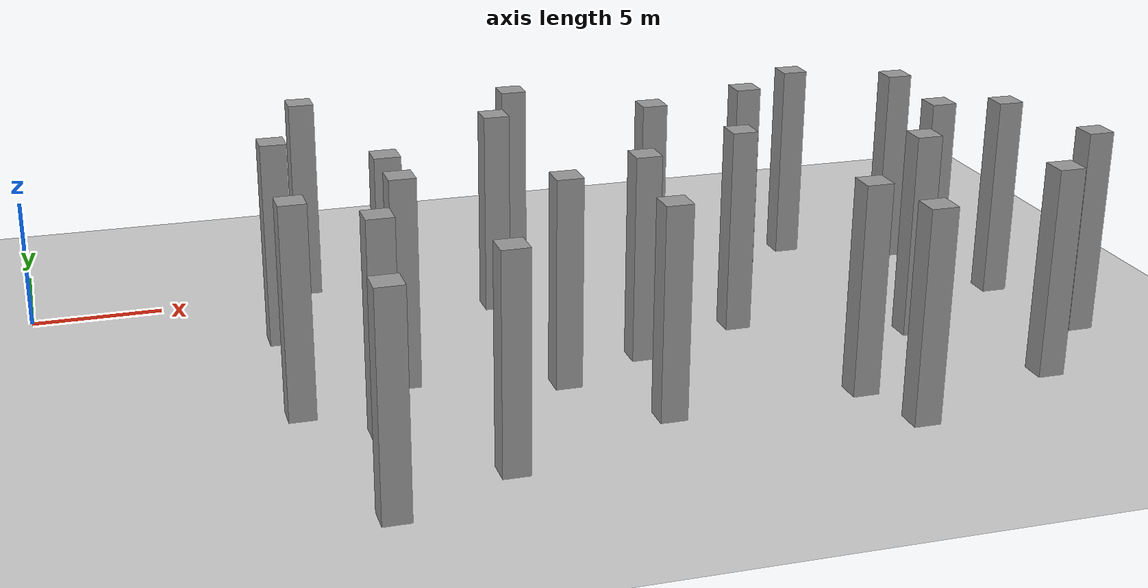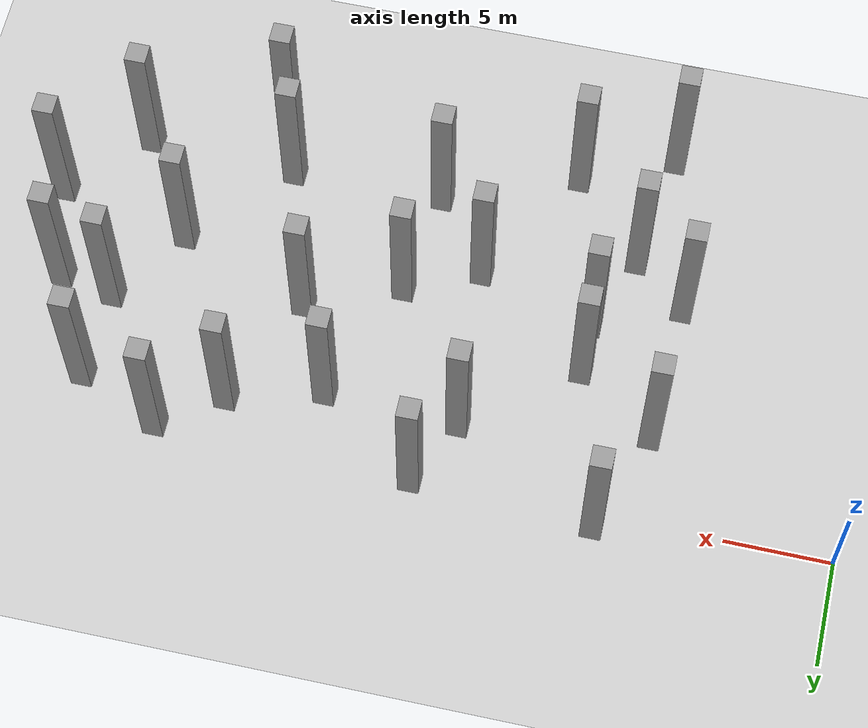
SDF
<sdf version="1.7">
 <world name="default">
  <model name="ground_plane">
   <static>1</static>
   <link name="link">
    <collision name="collision">
     <geometry><plane><normal>0 0 1</normal><size>100 100</size></plane></geometry>
     <surface>
      <contact><collide_bitmask>65535</collide_bitmask></contact>
      <friction><ode><mu>100</mu><mu2>50</mu2></ode></friction>
     </surface>
    </collision>
    <visual name="visual">
     <cast_shadows>0</cast_shadows>
     <geometry><plane><normal>0 0 1</normal><size>100 100</size></plane></geometry>
     <material>
      <script><uri>file://media/materials/scripts/gazebo.material</uri><name>Gazebo/Grey</name></script>
     </material>
    </visual>
   </link>
  </model>
  <model name="unit_box_static52">
   <link name="link">
    <inertial>
     <mass>1</mass>
     <inertia>
      <ixx>0.166667</ixx>
      <ixy>0</ixy>
      <ixz>0</ixz>
      <iyy>0.166667</iyy>
      <iyz>0</iyz>
      <izz>0.166667</izz>
     </inertia>
    </inertial>
    <visual name="visual">
     <geometry><box><size>1 1 8</size></box></geometry>
     <material>
      <script><name>Gazebo/Grey</name><uri>file://media/materials/scripts/gazebo.material</uri></script>
      <shader type="pixel"/>
     </material>
    </visual>
    <collision name="collision">
     <geometry><box><size>1 1 8</size></box></geometry>
     <surface>
      <friction>
       <ode><mu>1</mu><mu2>1</mu2><fdir1>0 0 0</fdir1><slip1>0</slip1><slip2>0</slip2></ode>
       <torsional>
        <coefficient>1</coefficient>
        <patch_radius>0</patch_radius>
        <surface_radius>0</surface_radius>
        <use_patch_radius>1</use_patch_radius>
        <ode><slip>0</slip></ode>
       </torsional>
      </friction>
      <bounce><restitution_coefficient>0</restitution_coefficient><threshold>1e+06</threshold></bounce>
      <contact>
       <collide_without_contact>0</collide_without_contact>
       <collide_without_contact_bitmask>1</collide_without_contact_bitmask>
       <collide_bitmask>1</collide_bitmask>
       <ode>
        <soft_cfm>0</soft_cfm>
        <soft_erp>0.2</soft_erp>
        <kp>1e+13</kp>
        <kd>1</kd>
        <max_vel>0.01</max_vel>
        <min_depth>0</min_depth>
       </ode>
       <bullet>
        <split_impulse>1</split_impulse>
        <split_impulse_penetration_threshold>-0.01</split_impulse_penetration_threshold>
        <soft_cfm>0</soft_cfm>
        <soft_erp>0.2</soft_erp>
        <kp>1e+13</kp>
        <kd>1</kd>
       </bullet>
      </contact>
     </surface>
    </collision>
   </link>
   <static>1</static>
   <pose>19.6242 0.16304 4 0 -0 0</pose>
  </model>
  <model name="unit_box_static59">
   <link name="link">
    <inertial>
     <mass>1</mass>
     <inertia>
      <ixx>0.166667</ixx>
      <ixy>0</ixy>
      <ixz>0</ixz>
      <iyy>0.166667</iyy>
      <iyz>0</iyz>
      <izz>0.166667</izz>
     </inertia>
    </inertial>
    <visual name="visual">
     <geometry><box><size>1 1 8</size></box></geometry>
     <material>
      <script><name>Gazebo/Grey</name><uri>file://media/materials/scripts/gazebo.material</uri></script>
      <shader type="pixel"/>
     </material>
    </visual>
    <collision name="collision">
     <geometry><box><size>1 1 8</size></box></geometry>
     <surface>
      <friction>
       <ode><mu>1</mu><mu2>1</mu2><fdir1>0 0 0</fdir1><slip1>0</slip1><slip2>0</slip2></ode>
       <torsional>
        <coefficient>1</coefficient>
        <patch_radius>0</patch_radius>
        <surface_radius>0</surface_radius>
        <use_patch_radius>1</use_patch_radius>
        <ode><slip>0</slip></ode>
       </torsional>
      </friction>
      <bounce><restitution_coefficient>0</restitution_coefficient><threshold>1e+06</threshold></bounce>
      <contact>
       <collide_without_contact>0</collide_without_contact>
       <collide_without_contact_bitmask>1</collide_without_contact_bitmask>
       <collide_bitmask>1</collide_bitmask>
       <ode>
        <soft_cfm>0</soft_cfm>
        <soft_erp>0.2</soft_erp>
        <kp>1e+13</kp>
        <kd>1</kd>
        <max_vel>0.01</max_vel>
        <min_depth>0</min_depth>
       </ode>
       <bullet>
        <split_impulse>1</split_impulse>
        <split_impulse_penetration_threshold>-0.01</split_impulse_penetration_threshold>
        <soft_cfm>0</soft_cfm>
        <soft_erp>0.2</soft_erp>
        <kp>1e+13</kp>
        <kd>1</kd>
       </bullet>
      </contact>
     </surface>
    </collision>
   </link>
   <static>1</static>
   <pose>11.0233 0.653893 4 0 -0 0</pose>
  </model>
  <model name="unit_box_static64">
   <link name="link">
    <inertial>
     <mass>1</mass>
     <inertia>
      <ixx>0.166667</ixx>
      <ixy>0</ixy>
      <ixz>0</ixz>
      <iyy>0.166667</iyy>
      <iyz>0</iyz>
      <izz>0.166667</izz>
     </inertia>
    </inertial>
    <visual name="visual">
     <geometry><box><size>1 1 8</size></box></geometry>
     <material>
      <script><name>Gazebo/Grey</name><uri>file://media/materials/scripts/gazebo.material</uri></script>
      <shader type="pixel"/>
     </material>
    </visual>
    <collision name="collision">
     <geometry><box><size>1 1 8</size></box></geometry>
     <surface>
      <friction>
       <ode><mu>1</mu><mu2>1</mu2><fdir1>0 0 0</fdir1><slip1>0</slip1><slip2>0</slip2></ode>
       <torsional>
        <coefficient>1</coefficient>
        <patch_radius>0</patch_radius>
        <surface_radius>0</surface_radius>
        <use_patch_radius>1</use_patch_radius>
        <ode><slip>0</slip></ode>
       </torsional>
      </friction>
      <bounce><restitution_coefficient>0</restitution_coefficient><threshold>1e+06</threshold></bounce>
      <contact>
       <collide_without_contact>0</collide_without_contact>
       <collide_without_contact_bitmask>1</collide_without_contact_bitmask>
       <collide_bitmask>1</collide_bitmask>
       <ode>
        <soft_cfm>0</soft_cfm>
        <soft_erp>0.2</soft_erp>
        <kp>1e+13</kp>
        <kd>1</kd>
        <max_vel>0.01</max_vel>
        <min_depth>0</min_depth>
       </ode>
       <bullet>
        <split_impulse>1</split_impulse>
        <split_impulse_penetration_threshold>-0.01</split_impulse_penetration_threshold>
        <soft_cfm>0</soft_cfm>
        <soft_erp>0.2</soft_erp>
        <kp>1e+13</kp>
        <kd>1</kd>
       </bullet>
      </contact>
     </surface>
    </collision>
   </link>
   <static>1</static>
   <pose>24.4703 -3.32359 4 0 -0 0</pose>
  </model>
  <model name="unit_box_static76">
   <link name="link">
    <inertial>
     <mass>1</mass>
     <inertia>
      <ixx>0.166667</ixx>
      <ixy>0</ixy>
      <ixz>0</ixz>
      <iyy>0.166667</iyy>
      <iyz>0</iyz>
      <izz>0.166667</izz>
     </inertia>
    </inertial>
    <visual name="visual">
     <geometry><box><size>1 1 8</size></box></geometry>
     <material>
      <script><name>Gazebo/Grey</name><uri>file://media/materials/scripts/gazebo.material</uri></script>
      <shader type="pixel"/>
     </material>
    </visual>
    <collision name="collision">
     <geometry><box><size>1 1 8</size></box></geometry>
     <surface>
      <friction>
       <ode><mu>1</mu><mu2>1</mu2><fdir1>0 0 0</fdir1><slip1>0</slip1><slip2>0</slip2></ode>
       <torsional>
        <coefficient>1</coefficient>
        <patch_radius>0</patch_radius>
        <surface_radius>0</surface_radius>
        <use_patch_radius>1</use_patch_radius>
        <ode><slip>0</slip></ode>
       </torsional>
      </friction>
      <bounce><restitution_coefficient>0</restitution_coefficient><threshold>1e+06</threshold></bounce>
      <contact>
       <collide_without_contact>0</collide_without_contact>
       <collide_without_contact_bitmask>1</collide_without_contact_bitmask>
       <collide_bitmask>1</collide_bitmask>
       <ode>
        <soft_cfm>0</soft_cfm>
        <soft_erp>0.2</soft_erp>
        <kp>1e+13</kp>
        <kd>1</kd>
        <max_vel>0.01</max_vel>
        <min_depth>0</min_depth>
       </ode>
       <bullet>
        <split_impulse>1</split_impulse>
        <split_impulse_penetration_threshold>-0.01</split_impulse_penetration_threshold>
        <soft_cfm>0</soft_cfm>
        <soft_erp>0.2</soft_erp>
        <kp>1e+13</kp>
        <kd>1</kd>
       </bullet>
      </contact>
     </surface>
    </collision>
   </link>
   <static>1</static>
   <pose>35.5996 -6.23962 4 0 -0 0</pose>
  </model>
  <model name="unit_box_static90">
   <link name="link">
    <inertial>
     <mass>1</mass>
     <inertia>
      <ixx>0.166667</ixx>
      <ixy>0</ixy>
      <ixz>0</ixz>
      <iyy>0.166667</iyy>
      <iyz>0</iyz>
      <izz>0.166667</izz>
     </inertia>
    </inertial>
    <visual name="visual">
     <geometry><box><size>1 1 8</size></box></geometry>
     <material>
      <script><name>Gazebo/Grey</name><uri>file://media/materials/scripts/gazebo.material</uri></script>
      <shader type="pixel"/>
     </material>
    </visual>
    <collision name="collision">
     <geometry><box><size>1 1 8</size></box></geometry>
     <surface>
      <friction>
       <ode><mu>1</mu><mu2>1</mu2><fdir1>0 0 0</fdir1><slip1>0</slip1><slip2>0</slip2></ode>
       <torsional>
        <coefficient>1</coefficient>
        <patch_radius>0</patch_radius>
        <surface_radius>0</surface_radius>
        <use_patch_radius>1</use_patch_radius>
        <ode><slip>0</slip></ode>
       </torsional>
      </friction>
      <bounce><restitution_coefficient>0</restitution_coefficient><threshold>1e+06</threshold></bounce>
      <contact>
       <collide_without_contact>0</collide_without_contact>
       <collide_without_contact_bitmask>1</collide_without_contact_bitmask>
       <collide_bitmask>1</collide_bitmask>
       <ode>
        <soft_cfm>0</soft_cfm>
        <soft_erp>0.2</soft_erp>
        <kp>1e+13</kp>
        <kd>1</kd>
        <max_vel>0.01</max_vel>
        <min_depth>0</min_depth>
       </ode>
       <bullet>
        <split_impulse>1</split_impulse>
        <split_impulse_penetration_threshold>-0.01</split_impulse_penetration_threshold>
        <soft_cfm>0</soft_cfm>
        <soft_erp>0.2</soft_erp>
        <kp>1e+13</kp>
        <kd>1</kd>
       </bullet>
      </contact>
     </surface>
    </collision>
   </link>
   <static>1</static>
   <pose>29.6703 -17.5053 4 0 -0 0</pose>
  </model>
  <model name="unit_box_static92">
   <link name="link">
    <inertial>
     <mass>1</mass>
     <inertia>
      <ixx>0.166667</ixx>
      <ixy>0</ixy>
      <ixz>0</ixz>
      <iyy>0.166667</iyy>
      <iyz>0</iyz>
      <izz>0.166667</izz>
     </inertia>
    </inertial>
    <visual name="visual">
     <geometry><box><size>1 1 8</size></box></geometry>
     <material>
      <script><name>Gazebo/Grey</name><uri>file://media/materials/scripts/gazebo.material</uri></script>
      <shader type="pixel"/>
     </material>
    </visual>
    <collision name="collision">
     <geometry><box><size>1 1 8</size></box></geometry>
     <surface>
      <friction>
       <ode><mu>1</mu><mu2>1</mu2><fdir1>0 0 0</fdir1><slip1>0</slip1><slip2>0</slip2></ode>
       <torsional>
        <coefficient>1</coefficient>
        <patch_radius>0</patch_radius>
        <surface_radius>0</surface_radius>
        <use_patch_radius>1</use_patch_radius>
        <ode><slip>0</slip></ode>
       </torsional>
      </friction>
      <bounce><restitution_coefficient>0</restitution_coefficient><threshold>1e+06</threshold></bounce>
      <contact>
       <collide_without_contact>0</collide_without_contact>
       <collide_without_contact_bitmask>1</collide_without_contact_bitmask>
       <collide_bitmask>1</collide_bitmask>
       <ode>
        <soft_cfm>0</soft_cfm>
        <soft_erp>0.2</soft_erp>
        <kp>1e+13</kp>
        <kd>1</kd>
        <max_vel>0.01</max_vel>
        <min_depth>0</min_depth>
       </ode>
       <bullet>
        <split_impulse>1</split_impulse>
        <split_impulse_penetration_threshold>-0.01</split_impulse_penetration_threshold>
        <soft_cfm>0</soft_cfm>
        <soft_erp>0.2</soft_erp>
        <kp>1e+13</kp>
        <kd>1</kd>
       </bullet>
      </contact>
     </surface>
    </collision>
   </link>
   <static>1</static>
   <pose>11.418 -13.3237 4 0 -0 0</pose>
  </model>
  <model name="unit_box_static95">
   <link name="link">
    <inertial>
     <mass>1</mass>
     <inertia>
      <ixx>0.166667</ixx>
      <ixy>0</ixy>
      <ixz>0</ixz>
      <iyy>0.166667</iyy>
      <iyz>0</iyz>
      <izz>0.166667</izz>
     </inertia>
    </inertial>
    <visual name="visual">
     <geometry><box><size>1 1 8</size></box></geometry>
     <material>
      <script><name>Gazebo/Grey</name><uri>file://media/materials/scripts/gazebo.material</uri></script>
      <shader type="pixel"/>
     </material>
    </visual>
    <collision name="collision">
     <geometry><box><size>1 1 8</size></box></geometry>
     <surface>
      <friction>
       <ode><mu>1</mu><mu2>1</mu2><fdir1>0 0 0</fdir1><slip1>0</slip1><slip2>0</slip2></ode>
       <torsional>
        <coefficient>1</coefficient>
        <patch_radius>0</patch_radius>
        <surface_radius>0</surface_radius>
        <use_patch_radius>1</use_patch_radius>
        <ode><slip>0</slip></ode>
       </torsional>
      </friction>
      <bounce><restitution_coefficient>0</restitution_coefficient><threshold>1e+06</threshold></bounce>
      <contact>
       <collide_without_contact>0</collide_without_contact>
       <collide_without_contact_bitmask>1</collide_without_contact_bitmask>
       <collide_bitmask>1</collide_bitmask>
       <ode>
        <soft_cfm>0</soft_cfm>
        <soft_erp>0.2</soft_erp>
        <kp>1e+13</kp>
        <kd>1</kd>
        <max_vel>0.01</max_vel>
        <min_depth>0</min_depth>
       </ode>
       <bullet>
        <split_impulse>1</split_impulse>
        <split_impulse_penetration_threshold>-0.01</split_impulse_penetration_threshold>
        <soft_cfm>0</soft_cfm>
        <soft_erp>0.2</soft_erp>
        <kp>1e+13</kp>
        <kd>1</kd>
       </bullet>
      </contact>
     </surface>
    </collision>
   </link>
   <static>1</static>
   <pose>12.9575 -6.97406 4 0 -0 0</pose>
  </model>
  <model name="unit_box_static98">
   <link name="link">
    <inertial>
     <mass>1</mass>
     <inertia>
      <ixx>0.166667</ixx>
      <ixy>0</ixy>
      <ixz>0</ixz>
      <iyy>0.166667</iyy>
      <iyz>0</iyz>
      <izz>0.166667</izz>
     </inertia>
    </inertial>
    <visual name="visual">
     <geometry><box><size>1 1 8</size></box></geometry>
     <material>
      <script><name>Gazebo/Grey</name><uri>file://media/materials/scripts/gazebo.material</uri></script>
      <shader type="pixel"/>
     </material>
    </visual>
    <collision name="collision">
     <geometry><box><size>1 1 8</size></box></geometry>
     <surface>
      <friction>
       <ode><mu>1</mu><mu2>1</mu2><fdir1>0 0 0</fdir1><slip1>0</slip1><slip2>0</slip2></ode>
       <torsional>
        <coefficient>1</coefficient>
        <patch_radius>0</patch_radius>
        <surface_radius>0</surface_radius>
        <use_patch_radius>1</use_patch_radius>
        <ode><slip>0</slip></ode>
       </torsional>
      </friction>
      <bounce><restitution_coefficient>0</restitution_coefficient><threshold>1e+06</threshold></bounce>
      <contact>
       <collide_without_contact>0</collide_without_contact>
       <collide_without_contact_bitmask>1</collide_without_contact_bitmask>
       <collide_bitmask>1</collide_bitmask>
       <ode>
        <soft_cfm>0</soft_cfm>
        <soft_erp>0.2</soft_erp>
        <kp>1e+13</kp>
        <kd>1</kd>
        <max_vel>0.01</max_vel>
        <min_depth>0</min_depth>
       </ode>
       <bullet>
        <split_impulse>1</split_impulse>
        <split_impulse_penetration_threshold>-0.01</split_impulse_penetration_threshold>
        <soft_cfm>0</soft_cfm>
        <soft_erp>0.2</soft_erp>
        <kp>1e+13</kp>
        <kd>1</kd>
       </bullet>
      </contact>
     </surface>
    </collision>
   </link>
   <static>1</static>
   <pose>26.5526 -7.65473 4 0 -0 0</pose>
  </model>
  <model name="unit_box_static103">
   <link name="link">
    <inertial>
     <mass>1</mass>
     <inertia>
      <ixx>0.166667</ixx>
      <ixy>0</ixy>
      <ixz>0</ixz>
      <iyy>0.166667</iyy>
      <iyz>0</iyz>
      <izz>0.166667</izz>
     </inertia>
    </inertial>
    <visual name="visual">
     <geometry><box><size>1 1 8</size></box></geometry>
     <material>
      <script><name>Gazebo/Grey</name><uri>file://media/materials/scripts/gazebo.material</uri></script>
      <shader type="pixel"/>
     </material>
    </visual>
    <collision name="collision">
     <geometry><box><size>1 1 8</size></box></geometry>
     <surface>
      <friction>
       <ode><mu>1</mu><mu2>1</mu2><fdir1>0 0 0</fdir1><slip1>0</slip1><slip2>0</slip2></ode>
       <torsional>
        <coefficient>1</coefficient>
        <patch_radius>0</patch_radius>
        <surface_radius>0</surface_radius>
        <use_patch_radius>1</use_patch_radius>
        <ode><slip>0</slip></ode>
       </torsional>
      </friction>
      <bounce><restitution_coefficient>0</restitution_coefficient><threshold>1e+06</threshold></bounce>
      <contact>
       <collide_without_contact>0</collide_without_contact>
       <collide_without_contact_bitmask>1</collide_without_contact_bitmask>
       <collide_bitmask>1</collide_bitmask>
       <ode>
        <soft_cfm>0</soft_cfm>
        <soft_erp>0.2</soft_erp>
        <kp>1e+13</kp>
        <kd>1</kd>
        <max_vel>0.01</max_vel>
        <min_depth>0</min_depth>
       </ode>
       <bullet>
        <split_impulse>1</split_impulse>
        <split_impulse_penetration_threshold>-0.01</split_impulse_penetration_threshold>
        <soft_cfm>0</soft_cfm>
        <soft_erp>0.2</soft_erp>
        <kp>1e+13</kp>
        <kd>1</kd>
       </bullet>
      </contact>
     </surface>
    </collision>
   </link>
   <static>1</static>
   <pose>18.0528 -3.05502 4 0 -0 0</pose>
  </model>
  <model name="unit_box_static112">
   <link name="link">
    <inertial>
     <mass>1</mass>
     <inertia>
      <ixx>0.166667</ixx>
      <ixy>0</ixy>
      <ixz>0</ixz>
      <iyy>0.166667</iyy>
      <iyz>0</iyz>
      <izz>0.166667</izz>
     </inertia>
    </inertial>
    <visual name="visual">
     <geometry><box><size>1 1 8</size></box></geometry>
     <material>
      <script><name>Gazebo/Grey</name><uri>file://media/materials/scripts/gazebo.material</uri></script>
      <shader type="pixel"/>
     </material>
    </visual>
    <collision name="collision">
     <geometry><box><size>1 1 8</size></box></geometry>
     <surface>
      <friction>
       <ode><mu>1</mu><mu2>1</mu2><fdir1>0 0 0</fdir1><slip1>0</slip1><slip2>0</slip2></ode>
       <torsional>
        <coefficient>1</coefficient>
        <patch_radius>0</patch_radius>
        <surface_radius>0</surface_radius>
        <use_patch_radius>1</use_patch_radius>
        <ode><slip>0</slip></ode>
       </torsional>
      </friction>
      <bounce><restitution_coefficient>0</restitution_coefficient><threshold>1e+06</threshold></bounce>
      <contact>
       <collide_without_contact>0</collide_without_contact>
       <collide_without_contact_bitmask>1</collide_without_contact_bitmask>
       <collide_bitmask>1</collide_bitmask>
       <ode>
        <soft_cfm>0</soft_cfm>
        <soft_erp>0.2</soft_erp>
        <kp>1e+13</kp>
        <kd>1</kd>
        <max_vel>0.01</max_vel>
        <min_depth>0</min_depth>
       </ode>
       <bullet>
        <split_impulse>1</split_impulse>
        <split_impulse_penetration_threshold>-0.01</split_impulse_penetration_threshold>
        <soft_cfm>0</soft_cfm>
        <soft_erp>0.2</soft_erp>
        <kp>1e+13</kp>
        <kd>1</kd>
       </bullet>
      </contact>
     </surface>
    </collision>
   </link>
   <static>1</static>
   <pose>14.9403 -17.2708 4 0 -0 0</pose>
  </model>
  <model name="unit_box_static113">
   <link name="link">
    <inertial>
     <mass>1</mass>
     <inertia>
      <ixx>0.166667</ixx>
      <ixy>0</ixy>
      <ixz>0</ixz>
      <iyy>0.166667</iyy>
      <iyz>0</iyz>
      <izz>0.166667</izz>
     </inertia>
    </inertial>
    <visual name="visual">
     <geometry><box><size>1 1 8</size></box></geometry>
     <material>
      <script><name>Gazebo/Grey</name><uri>file://media/materials/scripts/gazebo.material</uri></script>
      <shader type="pixel"/>
     </material>
    </visual>
    <collision name="collision">
     <geometry><box><size>1 1 8</size></box></geometry>
     <surface>
      <friction>
       <ode><mu>1</mu><mu2>1</mu2><fdir1>0 0 0</fdir1><slip1>0</slip1><slip2>0</slip2></ode>
       <torsional>
        <coefficient>1</coefficient>
        <patch_radius>0</patch_radius>
        <surface_radius>0</surface_radius>
        <use_patch_radius>1</use_patch_radius>
        <ode><slip>0</slip></ode>
       </torsional>
      </friction>
      <bounce><restitution_coefficient>0</restitution_coefficient><threshold>1e+06</threshold></bounce>
      <contact>
       <collide_without_contact>0</collide_without_contact>
       <collide_without_contact_bitmask>1</collide_without_contact_bitmask>
       <collide_bitmask>1</collide_bitmask>
       <ode>
        <soft_cfm>0</soft_cfm>
        <soft_erp>0.2</soft_erp>
        <kp>1e+13</kp>
        <kd>1</kd>
        <max_vel>0.01</max_vel>
        <min_depth>0</min_depth>
       </ode>
       <bullet>
        <split_impulse>1</split_impulse>
        <split_impulse_penetration_threshold>-0.01</split_impulse_penetration_threshold>
        <soft_cfm>0</soft_cfm>
        <soft_erp>0.2</soft_erp>
        <kp>1e+13</kp>
        <kd>1</kd>
       </bullet>
      </contact>
     </surface>
    </collision>
   </link>
   <static>1</static>
   <pose>22.0719 -9.50329 4 0 -0 0</pose>
  </model>
  <model name="unit_box_static122">
   <link name="link">
    <inertial>
     <mass>1</mass>
     <inertia>
      <ixx>0.166667</ixx>
      <ixy>0</ixy>
      <ixz>0</ixz>
      <iyy>0.166667</iyy>
      <iyz>0</iyz>
      <izz>0.166667</izz>
     </inertia>
    </inertial>
    <visual name="visual">
     <geometry><box><size>1 1 8</size></box></geometry>
     <material>
      <script><name>Gazebo/Grey</name><uri>file://media/materials/scripts/gazebo.material</uri></script>
      <shader type="pixel"/>
     </material>
    </visual>
    <collision name="collision">
     <geometry><box><size>1 1 8</size></box></geometry>
     <surface>
      <friction>
       <ode><mu>1</mu><mu2>1</mu2><fdir1>0 0 0</fdir1><slip1>0</slip1><slip2>0</slip2></ode>
       <torsional>
        <coefficient>1</coefficient>
        <patch_radius>0</patch_radius>
        <surface_radius>0</surface_radius>
        <use_patch_radius>1</use_patch_radius>
        <ode><slip>0</slip></ode>
       </torsional>
      </friction>
      <bounce><restitution_coefficient>0</restitution_coefficient><threshold>1e+06</threshold></bounce>
      <contact>
       <collide_without_contact>0</collide_without_contact>
       <collide_without_contact_bitmask>1</collide_without_contact_bitmask>
       <collide_bitmask>1</collide_bitmask>
       <ode>
        <soft_cfm>0</soft_cfm>
        <soft_erp>0.2</soft_erp>
        <kp>1e+13</kp>
        <kd>1</kd>
        <max_vel>0.01</max_vel>
        <min_depth>0</min_depth>
       </ode>
       <bullet>
        <split_impulse>1</split_impulse>
        <split_impulse_penetration_threshold>-0.01</split_impulse_penetration_threshold>
        <soft_cfm>0</soft_cfm>
        <soft_erp>0.2</soft_erp>
        <kp>1e+13</kp>
        <kd>1</kd>
       </bullet>
      </contact>
     </surface>
    </collision>
   </link>
   <static>1</static>
   <pose>12.9654 -9.52103 4 0 -0 0</pose>
  </model>
  <model name="unit_box_static123">
   <link name="link">
    <inertial>
     <mass>1</mass>
     <inertia>
      <ixx>0.166667</ixx>
      <ixy>0</ixy>
      <ixz>0</ixz>
      <iyy>0.166667</iyy>
      <iyz>0</iyz>
      <izz>0.166667</izz>
     </inertia>
    </inertial>
    <visual name="visual">
     <geometry><box><size>1 1 8</size></box></geometry>
     <material>
      <script><name>Gazebo/Grey</name><uri>file://media/materials/scripts/gazebo.material</uri></script>
      <shader type="pixel"/>
     </material>
    </visual>
    <collision name="collision">
     <geometry><box><size>1 1 8</size></box></geometry>
     <surface>
      <friction>
       <ode><mu>1</mu><mu2>1</mu2><fdir1>0 0 0</fdir1><slip1>0</slip1><slip2>0</slip2></ode>
       <torsional>
        <coefficient>1</coefficient>
        <patch_radius>0</patch_radius>
        <surface_radius>0</surface_radius>
        <use_patch_radius>1</use_patch_radius>
        <ode><slip>0</slip></ode>
       </torsional>
      </friction>
      <bounce><restitution_coefficient>0</restitution_coefficient><threshold>1e+06</threshold></bounce>
      <contact>
       <collide_without_contact>0</collide_without_contact>
       <collide_without_contact_bitmask>1</collide_without_contact_bitmask>
       <collide_bitmask>1</collide_bitmask>
       <ode>
        <soft_cfm>0</soft_cfm>
        <soft_erp>0.2</soft_erp>
        <kp>1e+13</kp>
        <kd>1</kd>
        <max_vel>0.01</max_vel>
        <min_depth>0</min_depth>
       </ode>
       <bullet>
        <split_impulse>1</split_impulse>
        <split_impulse_penetration_threshold>-0.01</split_impulse_penetration_threshold>
        <soft_cfm>0</soft_cfm>
        <soft_erp>0.2</soft_erp>
        <kp>1e+13</kp>
        <kd>1</kd>
       </bullet>
      </contact>
     </surface>
    </collision>
   </link>
   <static>1</static>
   <pose>35.8394 -1.87637 4 0 -0 0</pose>
  </model>
  <model name="unit_box_static139">
   <link name="link">
    <inertial>
     <mass>1</mass>
     <inertia>
      <ixx>0.166667</ixx>
      <ixy>0</ixy>
      <ixz>0</ixz>
      <iyy>0.166667</iyy>
      <iyz>0</iyz>
      <izz>0.166667</izz>
     </inertia>
    </inertial>
    <visual name="visual">
     <geometry><box><size>1 1 8</size></box></geometry>
     <material>
      <script><name>Gazebo/Grey</name><uri>file://media/materials/scripts/gazebo.material</uri></script>
      <shader type="pixel"/>
     </material>
    </visual>
    <collision name="collision">
     <geometry><box><size>1 1 8</size></box></geometry>
     <surface>
      <friction>
       <ode><mu>1</mu><mu2>1</mu2><fdir1>0 0 0</fdir1><slip1>0</slip1><slip2>0</slip2></ode>
       <torsional>
        <coefficient>1</coefficient>
        <patch_radius>0</patch_radius>
        <surface_radius>0</surface_radius>
        <use_patch_radius>1</use_patch_radius>
        <ode><slip>0</slip></ode>
       </torsional>
      </friction>
      <bounce><restitution_coefficient>0</restitution_coefficient><threshold>1e+06</threshold></bounce>
      <contact>
       <collide_without_contact>0</collide_without_contact>
       <collide_without_contact_bitmask>1</collide_without_contact_bitmask>
       <collide_bitmask>1</collide_bitmask>
       <ode>
        <soft_cfm>0</soft_cfm>
        <soft_erp>0.2</soft_erp>
        <kp>1e+13</kp>
        <kd>1</kd>
        <max_vel>0.01</max_vel>
        <min_depth>0</min_depth>
       </ode>
       <bullet>
        <split_impulse>1</split_impulse>
        <split_impulse_penetration_threshold>-0.01</split_impulse_penetration_threshold>
        <soft_cfm>0</soft_cfm>
        <soft_erp>0.2</soft_erp>
        <kp>1e+13</kp>
        <kd>1</kd>
       </bullet>
      </contact>
     </surface>
    </collision>
   </link>
   <static>1</static>
   <pose>10.5188 -19.269 4 0 -0 0</pose>
  </model>
  <model name="unit_box_static140">
   <link name="link">
    <inertial>
     <mass>1</mass>
     <inertia>
      <ixx>0.166667</ixx>
      <ixy>0</ixy>
      <ixz>0</ixz>
      <iyy>0.166667</iyy>
      <iyz>0</iyz>
      <izz>0.166667</izz>
     </inertia>
    </inertial>
    <visual name="visual">
     <geometry><box><size>1 1 8</size></box></geometry>
     <material>
      <script><name>Gazebo/Grey</name><uri>file://media/materials/scripts/gazebo.material</uri></script>
      <shader type="pixel"/>
     </material>
    </visual>
    <collision name="collision">
     <geometry><box><size>1 1 8</size></box></geometry>
     <surface>
      <friction>
       <ode><mu>1</mu><mu2>1</mu2><fdir1>0 0 0</fdir1><slip1>0</slip1><slip2>0</slip2></ode>
       <torsional>
        <coefficient>1</coefficient>
        <patch_radius>0</patch_radius>
        <surface_radius>0</surface_radius>
        <use_patch_radius>1</use_patch_radius>
        <ode><slip>0</slip></ode>
       </torsional>
      </friction>
      <bounce><restitution_coefficient>0</restitution_coefficient><threshold>1e+06</threshold></bounce>
      <contact>
       <collide_without_contact>0</collide_without_contact>
       <collide_without_contact_bitmask>1</collide_without_contact_bitmask>
       <collide_bitmask>1</collide_bitmask>
       <ode>
        <soft_cfm>0</soft_cfm>
        <soft_erp>0.2</soft_erp>
        <kp>1e+13</kp>
        <kd>1</kd>
        <max_vel>0.01</max_vel>
        <min_depth>0</min_depth>
       </ode>
       <bullet>
        <split_impulse>1</split_impulse>
        <split_impulse_penetration_threshold>-0.01</split_impulse_penetration_threshold>
        <soft_cfm>0</soft_cfm>
        <soft_erp>0.2</soft_erp>
        <kp>1e+13</kp>
        <kd>1</kd>
       </bullet>
      </contact>
     </surface>
    </collision>
   </link>
   <static>1</static>
   <pose>18.5894 -11.1366 4 0 -0 0</pose>
  </model>
  <model name="unit_box_static147">
   <link name="link">
    <inertial>
     <mass>1</mass>
     <inertia>
      <ixx>0.166667</ixx>
      <ixy>0</ixy>
      <ixz>0</ixz>
      <iyy>0.166667</iyy>
      <iyz>0</iyz>
      <izz>0.166667</izz>
     </inertia>
    </inertial>
    <visual name="visual">
     <geometry><box><size>1 1 8</size></box></geometry>
     <material>
      <script><name>Gazebo/Grey</name><uri>file://media/materials/scripts/gazebo.material</uri></script>
      <shader type="pixel"/>
     </material>
    </visual>
    <collision name="collision">
     <geometry><box><size>1 1 8</size></box></geometry>
     <surface>
      <friction>
       <ode><mu>1</mu><mu2>1</mu2><fdir1>0 0 0</fdir1><slip1>0</slip1><slip2>0</slip2></ode>
       <torsional>
        <coefficient>1</coefficient>
        <patch_radius>0</patch_radius>
        <surface_radius>0</surface_radius>
        <use_patch_radius>1</use_patch_radius>
        <ode><slip>0</slip></ode>
       </torsional>
      </friction>
      <bounce><restitution_coefficient>0</restitution_coefficient><threshold>1e+06</threshold></bounce>
      <contact>
       <collide_without_contact>0</collide_without_contact>
       <collide_without_contact_bitmask>1</collide_without_contact_bitmask>
       <collide_bitmask>1</collide_bitmask>
       <ode>
        <soft_cfm>0</soft_cfm>
        <soft_erp>0.2</soft_erp>
        <kp>1e+13</kp>
        <kd>1</kd>
        <max_vel>0.01</max_vel>
        <min_depth>0</min_depth>
       </ode>
       <bullet>
        <split_impulse>1</split_impulse>
        <split_impulse_penetration_threshold>-0.01</split_impulse_penetration_threshold>
        <soft_cfm>0</soft_cfm>
        <soft_erp>0.2</soft_erp>
        <kp>1e+13</kp>
        <kd>1</kd>
       </bullet>
      </contact>
     </surface>
    </collision>
   </link>
   <static>1</static>
   <pose>21.3098 -14.7887 4 0 -0 0</pose>
  </model>
  <model name="unit_box_static150">
   <link name="link">
    <inertial>
     <mass>1</mass>
     <inertia>
      <ixx>0.166667</ixx>
      <ixy>0</ixy>
      <ixz>0</ixz>
      <iyy>0.166667</iyy>
      <iyz>0</iyz>
      <izz>0.166667</izz>
     </inertia>
    </inertial>
    <visual name="visual">
     <geometry><box><size>1 1 8</size></box></geometry>
     <material>
      <script><name>Gazebo/Grey</name><uri>file://media/materials/scripts/gazebo.material</uri></script>
      <shader type="pixel"/>
     </material>
    </visual>
    <collision name="collision">
     <geometry><box><size>1 1 8</size></box></geometry>
     <surface>
      <friction>
       <ode><mu>1</mu><mu2>1</mu2><fdir1>0 0 0</fdir1><slip1>0</slip1><slip2>0</slip2></ode>
       <torsional>
        <coefficient>1</coefficient>
        <patch_radius>0</patch_radius>
        <surface_radius>0</surface_radius>
        <use_patch_radius>1</use_patch_radius>
        <ode><slip>0</slip></ode>
       </torsional>
      </friction>
      <bounce><restitution_coefficient>0</restitution_coefficient><threshold>1e+06</threshold></bounce>
      <contact>
       <collide_without_contact>0</collide_without_contact>
       <collide_without_contact_bitmask>1</collide_without_contact_bitmask>
       <collide_bitmask>1</collide_bitmask>
       <ode>
        <soft_cfm>0</soft_cfm>
        <soft_erp>0.2</soft_erp>
        <kp>1e+13</kp>
        <kd>1</kd>
        <max_vel>0.01</max_vel>
        <min_depth>0</min_depth>
       </ode>
       <bullet>
        <split_impulse>1</split_impulse>
        <split_impulse_penetration_threshold>-0.01</split_impulse_penetration_threshold>
        <soft_cfm>0</soft_cfm>
        <soft_erp>0.2</soft_erp>
        <kp>1e+13</kp>
        <kd>1</kd>
       </bullet>
      </contact>
     </surface>
    </collision>
   </link>
   <static>1</static>
   <pose>32.985 -10.0644 4 0 -0 0</pose>
  </model>
  <model name="unit_box_static153">
   <link name="link">
    <inertial>
     <mass>1</mass>
     <inertia>
      <ixx>0.166667</ixx>
      <ixy>0</ixy>
      <ixz>0</ixz>
      <iyy>0.166667</iyy>
      <iyz>0</iyz>
      <izz>0.166667</izz>
     </inertia>
    </inertial>
    <visual name="visual">
     <geometry><box><size>1 1 8</size></box></geometry>
     <material>
      <script><name>Gazebo/Grey</name><uri>file://media/materials/scripts/gazebo.material</uri></script>
      <shader type="pixel"/>
     </material>
    </visual>
    <collision name="collision">
     <geometry><box><size>1 1 8</size></box></geometry>
     <surface>
      <friction>
       <ode><mu>1</mu><mu2>1</mu2><fdir1>0 0 0</fdir1><slip1>0</slip1><slip2>0</slip2></ode>
       <torsional>
        <coefficient>1</coefficient>
        <patch_radius>0</patch_radius>
        <surface_radius>0</surface_radius>
        <use_patch_radius>1</use_patch_radius>
        <ode><slip>0</slip></ode>
       </torsional>
      </friction>
      <bounce><restitution_coefficient>0</restitution_coefficient><threshold>1e+06</threshold></bounce>
      <contact>
       <collide_without_contact>0</collide_without_contact>
       <collide_without_contact_bitmask>1</collide_without_contact_bitmask>
       <collide_bitmask>1</collide_bitmask>
       <ode>
        <soft_cfm>0</soft_cfm>
        <soft_erp>0.2</soft_erp>
        <kp>1e+13</kp>
        <kd>1</kd>
        <max_vel>0.01</max_vel>
        <min_depth>0</min_depth>
       </ode>
       <bullet>
        <split_impulse>1</split_impulse>
        <split_impulse_penetration_threshold>-0.01</split_impulse_penetration_threshold>
        <soft_cfm>0</soft_cfm>
        <soft_erp>0.2</soft_erp>
        <kp>1e+13</kp>
        <kd>1</kd>
       </bullet>
      </contact>
     </surface>
    </collision>
   </link>
   <static>1</static>
   <pose>31.8659 -0.09638 4 0 -0 0</pose>
  </model>
  <model name="unit_box_static156">
   <link name="link">
    <inertial>
     <mass>1</mass>
     <inertia>
      <ixx>0.166667</ixx>
      <ixy>0</ixy>
      <ixz>0</ixz>
      <iyy>0.166667</iyy>
      <iyz>0</iyz>
      <izz>0.166667</izz>
     </inertia>
    </inertial>
    <visual name="visual">
     <geometry><box><size>1 1 8</size></box></geometry>
     <material>
      <script><name>Gazebo/Grey</name><uri>file://media/materials/scripts/gazebo.material</uri></script>
      <shader type="pixel"/>
     </material>
    </visual>
    <collision name="collision">
     <geometry><box><size>1 1 8</size></box></geometry>
     <surface>
      <friction>
       <ode><mu>1</mu><mu2>1</mu2><fdir1>0 0 0</fdir1><slip1>0</slip1><slip2>0</slip2></ode>
       <torsional>
        <coefficient>1</coefficient>
        <patch_radius>0</patch_radius>
        <surface_radius>0</surface_radius>
        <use_patch_radius>1</use_patch_radius>
        <ode><slip>0</slip></ode>
       </torsional>
      </friction>
      <bounce><restitution_coefficient>0</restitution_coefficient><threshold>1e+06</threshold></bounce>
      <contact>
       <collide_without_contact>0</collide_without_contact>
       <collide_without_contact_bitmask>1</collide_without_contact_bitmask>
       <collide_bitmask>1</collide_bitmask>
       <ode>
        <soft_cfm>0</soft_cfm>
        <soft_erp>0.2</soft_erp>
        <kp>1e+13</kp>
        <kd>1</kd>
        <max_vel>0.01</max_vel>
        <min_depth>0</min_depth>
       </ode>
       <bullet>
        <split_impulse>1</split_impulse>
        <split_impulse_penetration_threshold>-0.01</split_impulse_penetration_threshold>
        <soft_cfm>0</soft_cfm>
        <soft_erp>0.2</soft_erp>
        <kp>1e+13</kp>
        <kd>1</kd>
       </bullet>
      </contact>
     </surface>
    </collision>
   </link>
   <static>1</static>
   <pose>28.6942 -14.6691 4 0 -0 0</pose>
  </model>
  <model name="unit_box_static169">
   <link name="link">
    <inertial>
     <mass>1</mass>
     <inertia>
      <ixx>0.166667</ixx>
      <ixy>0</ixy>
      <ixz>0</ixz>
      <iyy>0.166667</iyy>
      <iyz>0</iyz>
      <izz>0.166667</izz>
     </inertia>
    </inertial>
    <visual name="visual">
     <geometry><box><size>1 1 8</size></box></geometry>
     <material>
      <script><name>Gazebo/Grey</name><uri>file://media/materials/scripts/gazebo.material</uri></script>
      <shader type="pixel"/>
     </material>
    </visual>
    <collision name="collision">
     <geometry><box><size>1 1 8</size></box></geometry>
     <surface>
      <friction>
       <ode><mu>1</mu><mu2>1</mu2><fdir1>0 0 0</fdir1><slip1>0</slip1><slip2>0</slip2></ode>
       <torsional>
        <coefficient>1</coefficient>
        <patch_radius>0</patch_radius>
        <surface_radius>0</surface_radius>
        <use_patch_radius>1</use_patch_radius>
        <ode><slip>0</slip></ode>
       </torsional>
      </friction>
      <bounce><restitution_coefficient>0</restitution_coefficient><threshold>1e+06</threshold></bounce>
      <contact>
       <collide_without_contact>0</collide_without_contact>
       <collide_without_contact_bitmask>1</collide_without_contact_bitmask>
       <collide_bitmask>1</collide_bitmask>
       <ode>
        <soft_cfm>0</soft_cfm>
        <soft_erp>0.2</soft_erp>
        <kp>1e+13</kp>
        <kd>1</kd>
        <max_vel>0.01</max_vel>
        <min_depth>0</min_depth>
       </ode>
       <bullet>
        <split_impulse>1</split_impulse>
        <split_impulse_penetration_threshold>-0.01</split_impulse_penetration_threshold>
        <soft_cfm>0</soft_cfm>
        <soft_erp>0.2</soft_erp>
        <kp>1e+13</kp>
        <kd>1</kd>
       </bullet>
      </contact>
     </surface>
    </collision>
   </link>
   <static>1</static>
   <pose>8.85657 -11.1911 4 0 -0 0</pose>
  </model>
  <model name="unit_box_static189">
   <link name="link">
    <inertial>
     <mass>1</mass>
     <inertia>
      <ixx>0.166667</ixx>
      <ixy>0</ixy>
      <ixz>0</ixz>
      <iyy>0.166667</iyy>
      <iyz>0</iyz>
      <izz>0.166667</izz>
     </inertia>
    </inertial>
    <visual name="visual">
     <geometry><box><size>1 1 8</size></box></geometry>
     <material>
      <script><name>Gazebo/Grey</name><uri>file://media/materials/scripts/gazebo.material</uri></script>
      <shader type="pixel"/>
     </material>
    </visual>
    <collision name="collision">
     <geometry><box><size>1 1 8</size></box></geometry>
     <surface>
      <friction>
       <ode><mu>1</mu><mu2>1</mu2><fdir1>0 0 0</fdir1><slip1>0</slip1><slip2>0</slip2></ode>
       <torsional>
        <coefficient>1</coefficient>
        <patch_radius>0</patch_radius>
        <surface_radius>0</surface_radius>
        <use_patch_radius>1</use_patch_radius>
        <ode><slip>0</slip></ode>
       </torsional>
      </friction>
      <bounce><restitution_coefficient>0</restitution_coefficient><threshold>1e+06</threshold></bounce>
      <contact>
       <collide_without_contact>0</collide_without_contact>
       <collide_without_contact_bitmask>1</collide_without_contact_bitmask>
       <collide_bitmask>1</collide_bitmask>
       <ode>
        <soft_cfm>0</soft_cfm>
        <soft_erp>0.2</soft_erp>
        <kp>1e+13</kp>
        <kd>1</kd>
        <max_vel>0.01</max_vel>
        <min_depth>0</min_depth>
       </ode>
       <bullet>
        <split_impulse>1</split_impulse>
        <split_impulse_penetration_threshold>-0.01</split_impulse_penetration_threshold>
        <soft_cfm>0</soft_cfm>
        <soft_erp>0.2</soft_erp>
        <kp>1e+13</kp>
        <kd>1</kd>
       </bullet>
      </contact>
     </surface>
    </collision>
   </link>
   <static>1</static>
   <pose>28.951 -2.09738 4 0 -0 0</pose>
  </model>
  <model name="unit_box_static138_clone_0">
   <link name="link">
    <inertial>
     <mass>1</mass>
     <inertia>
      <ixx>0.166667</ixx>
      <ixy>0</ixy>
      <ixz>0</ixz>
      <iyy>0.166667</iyy>
      <iyz>0</iyz>
      <izz>0.166667</izz>
     </inertia>
    </inertial>
    <visual name="visual">
     <geometry><box><size>1 1 8</size></box></geometry>
     <material>
      <script><name>Gazebo/Grey</name><uri>file://media/materials/scripts/gazebo.material</uri></script>
      <shader type="pixel"/>
     </material>
    </visual>
    <collision name="collision">
     <geometry><box><size>1 1 8</size></box></geometry>
     <surface>
      <friction>
       <ode><mu>1</mu><mu2>1</mu2><fdir1>0 0 0</fdir1><slip1>0</slip1><slip2>0</slip2></ode>
       <torsional>
        <coefficient>1</coefficient>
        <patch_radius>0</patch_radius>
        <surface_radius>0</surface_radius>
        <use_patch_radius>1</use_patch_radius>
        <ode><slip>0</slip></ode>
       </torsional>
      </friction>
      <bounce><restitution_coefficient>0</restitution_coefficient><threshold>1e+06</threshold></bounce>
      <contact>
       <collide_without_contact>0</collide_without_contact>
       <collide_without_contact_bitmask>1</collide_without_contact_bitmask>
       <collide_bitmask>1</collide_bitmask>
       <ode>
        <soft_cfm>0</soft_cfm>
        <soft_erp>0.2</soft_erp>
        <kp>1e+13</kp>
        <kd>1</kd>
        <max_vel>0.01</max_vel>
        <min_depth>0</min_depth>
       </ode>
       <bullet>
        <split_impulse>1</split_impulse>
        <split_impulse_penetration_threshold>-0.01</split_impulse_penetration_threshold>
        <soft_cfm>0</soft_cfm>
        <soft_erp>0.2</soft_erp>
        <kp>1e+13</kp>
        <kd>1</kd>
       </bullet>
      </contact>
     </surface>
    </collision>
   </link>
   <static>1</static>
   <pose>9.20448 -4.31425 4 0 -0 0</pose>
  </model>
  <model name="unit_box_static138_clone_1">
   <link name="link">
    <inertial>
     <mass>1</mass>
     <inertia>
      <ixx>0.166667</ixx>
      <ixy>0</ixy>
      <ixz>0</ixz>
      <iyy>0.166667</iyy>
      <iyz>0</iyz>
      <izz>0.166667</izz>
     </inertia>
    </inertial>
    <visual name="visual">
     <geometry><box><size>1 1 8</size></box></geometry>
     <material>
      <script><name>Gazebo/Grey</name><uri>file://media/materials/scripts/gazebo.material</uri></script>
      <shader type="pixel"/>
     </material>
    </visual>
    <collision name="collision">
     <geometry><box><size>1 1 8</size></box></geometry>
     <surface>
      <friction>
       <ode><mu>1</mu><mu2>1</mu2><fdir1>0 0 0</fdir1><slip1>0</slip1><slip2>0</slip2></ode>
       <torsional>
        <coefficient>1</coefficient>
        <patch_radius>0</patch_radius>
        <surface_radius>0</surface_radius>
        <use_patch_radius>1</use_patch_radius>
        <ode><slip>0</slip></ode>
       </torsional>
      </friction>
      <bounce><restitution_coefficient>0</restitution_coefficient><threshold>1e+06</threshold></bounce>
      <contact>
       <collide_without_contact>0</collide_without_contact>
       <collide_without_contact_bitmask>1</collide_without_contact_bitmask>
       <collide_bitmask>1</collide_bitmask>
       <ode>
        <soft_cfm>0</soft_cfm>
        <soft_erp>0.2</soft_erp>
        <kp>1e+13</kp>
        <kd>1</kd>
        <max_vel>0.01</max_vel>
        <min_depth>0</min_depth>
       </ode>
       <bullet>
        <split_impulse>1</split_impulse>
        <split_impulse_penetration_threshold>-0.01</split_impulse_penetration_threshold>
        <soft_cfm>0</soft_cfm>
        <soft_erp>0.2</soft_erp>
        <kp>1e+13</kp>
        <kd>1</kd>
       </bullet>
      </contact>
     </surface>
    </collision>
   </link>
   <static>1</static>
   <pose>39.4168 -11.408 4 0 -0 0</pose>
  </model>
  <model name="unit_box_static138_clone_6">
   <link name="link">
    <inertial>
     <mass>1</mass>
     <inertia>
      <ixx>0.166667</ixx>
      <ixy>0</ixy>
      <ixz>0</ixz>
      <iyy>0.166667</iyy>
      <iyz>0</iyz>
      <izz>0.166667</izz>
     </inertia>
    </inertial>
    <visual name="visual">
     <geometry><box><size>1 1 8</size></box></geometry>
     <material>
      <script><name>Gazebo/Grey</name><uri>file://media/materials/scripts/gazebo.material</uri></script>
      <shader type="pixel"/>
     </material>
    </visual>
    <collision name="collision">
     <geometry><box><size>1 1 8</size></box></geometry>
     <surface>
      <friction>
       <ode><mu>1</mu><mu2>1</mu2><fdir1>0 0 0</fdir1><slip1>0</slip1><slip2>0</slip2></ode>
       <torsional>
        <coefficient>1</coefficient>
        <patch_radius>0</patch_radius>
        <surface_radius>0</surface_radius>
        <use_patch_radius>1</use_patch_radius>
        <ode><slip>0</slip></ode>
       </torsional>
      </friction>
      <bounce><restitution_coefficient>0</restitution_coefficient><threshold>1e+06</threshold></bounce>
      <contact>
       <collide_without_contact>0</collide_without_contact>
       <collide_without_contact_bitmask>1</collide_without_contact_bitmask>
       <collide_bitmask>1</collide_bitmask>
       <ode>
        <soft_cfm>0</soft_cfm>
        <soft_erp>0.2</soft_erp>
        <kp>1e+13</kp>
        <kd>1</kd>
        <max_vel>0.01</max_vel>
        <min_depth>0</min_depth>
       </ode>
       <bullet>
        <split_impulse>1</split_impulse>
        <split_impulse_penetration_threshold>-0.01</split_impulse_penetration_threshold>
        <soft_cfm>0</soft_cfm>
        <soft_erp>0.2</soft_erp>
        <kp>1e+13</kp>
        <kd>1</kd>
       </bullet>
      </contact>
     </surface>
    </collision>
   </link>
   <static>1</static>
   <pose>38.2454 -6.7943 4 0 -0 0</pose>
  </model>
  <model name="unit_box_static138_clone_10">
   <link name="link">
    <inertial>
     <mass>1</mass>
     <inertia>
      <ixx>0.166667</ixx>
      <ixy>0</ixy>
      <ixz>0</ixz>
      <iyy>0.166667</iyy>
      <iyz>0</iyz>
      <izz>0.166667</izz>
     </inertia>
    </inertial>
    <visual name="visual">
     <geometry><box><size>1 1 8</size></box></geometry>
     <material>
      <script><name>Gazebo/Grey</name><uri>file://media/materials/scripts/gazebo.material</uri></script>
      <shader type="pixel"/>
     </material>
    </visual>
    <collision name="collision">
     <geometry><box><size>1 1 8</size></box></geometry>
     <surface>
      <friction>
       <ode><mu>1</mu><mu2>1</mu2><fdir1>0 0 0</fdir1><slip1>0</slip1><slip2>0</slip2></ode>
       <torsional>
        <coefficient>1</coefficient>
        <patch_radius>0</patch_radius>
        <surface_radius>0</surface_radius>
        <use_patch_radius>1</use_patch_radius>
        <ode><slip>0</slip></ode>
       </torsional>
      </friction>
      <bounce><restitution_coefficient>0</restitution_coefficient><threshold>1e+06</threshold></bounce>
      <contact>
       <collide_without_contact>0</collide_without_contact>
       <collide_without_contact_bitmask>1</collide_without_contact_bitmask>
       <collide_bitmask>1</collide_bitmask>
       <ode>
        <soft_cfm>0</soft_cfm>
        <soft_erp>0.2</soft_erp>
        <kp>1e+13</kp>
        <kd>1</kd>
        <max_vel>0.01</max_vel>
        <min_depth>0</min_depth>
       </ode>
       <bullet>
        <split_impulse>1</split_impulse>
        <split_impulse_penetration_threshold>-0.01</split_impulse_penetration_threshold>
        <soft_cfm>0</soft_cfm>
        <soft_erp>0.2</soft_erp>
        <kp>1e+13</kp>
        <kd>1</kd>
       </bullet>
      </contact>
     </surface>
    </collision>
   </link>
   <static>1</static>
   <pose>36 -15 4 0 -0 0</pose>
  </model>
 </world>
</sdf>
